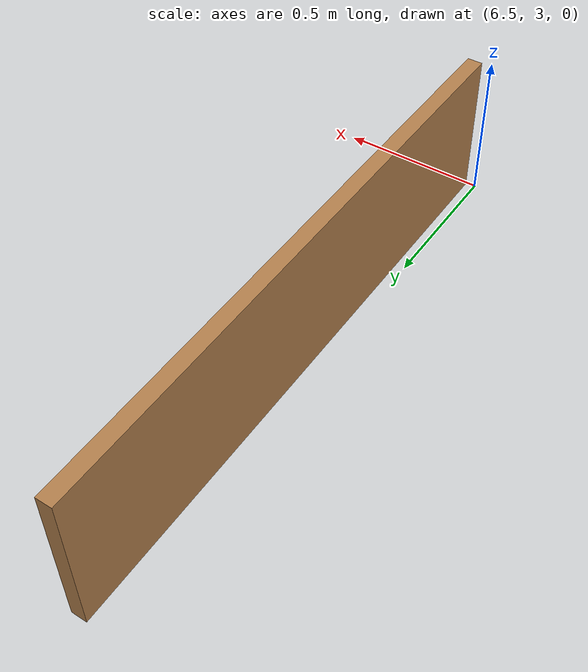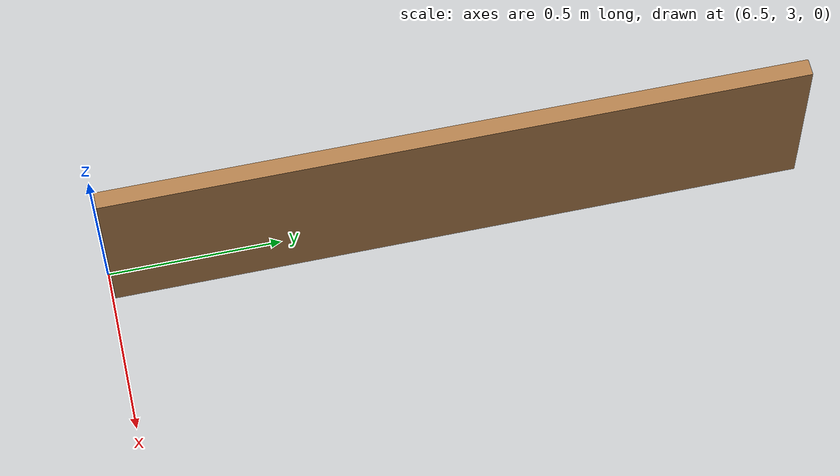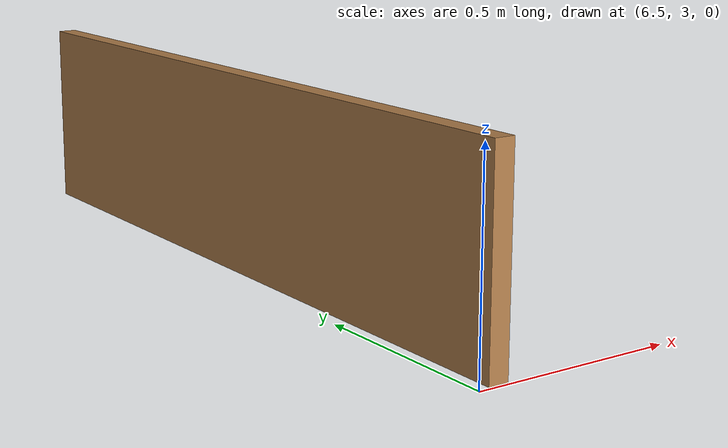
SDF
<?xml version='1.0'?>
<sdf version='1.6'>
  <model name='assignment2'>
    <pose frame=''>6.556 4.008 0 0 -0 0</pose>
    <link name='Wall_2'>
      <collision name='Wall_2_Collision'>
        <geometry>
          <box>
            <size>2 0.05 0.5</size>
          </box>
        </geometry>
        <pose frame=''>0 0 0.25 0 -0 0</pose>
      </collision>
      <visual name='Wall_2_Visual'>
        <pose frame=''>0 0 0.25 0 -0 0</pose>
        <geometry>
          <box>
            <size>2 0.05 0.5</size>
          </box>
        </geometry>
        <material>
          <script>
            <uri>file://media/materials/scripts/gazebo.material</uri>
            <name>Gazebo/Wood</name>
          </script>
          <ambient>1 1 1 1</ambient>
        </material>
        <meta>
          <layer>0</layer>
        </meta>
      </visual>
      <pose frame=''>0 0 0 0 -0 -1.5708</pose>
    </link>
    <static>1</static>
  </model>
</sdf>
